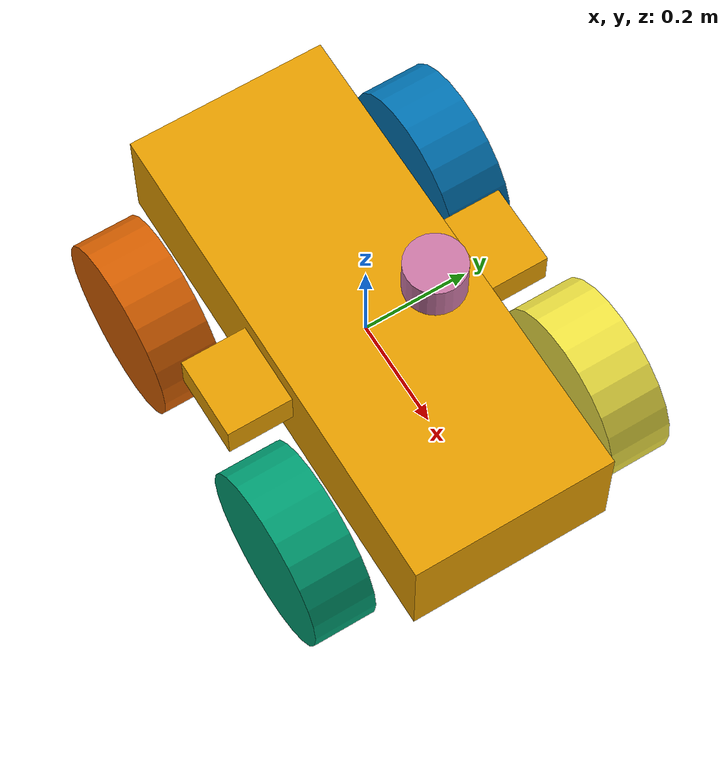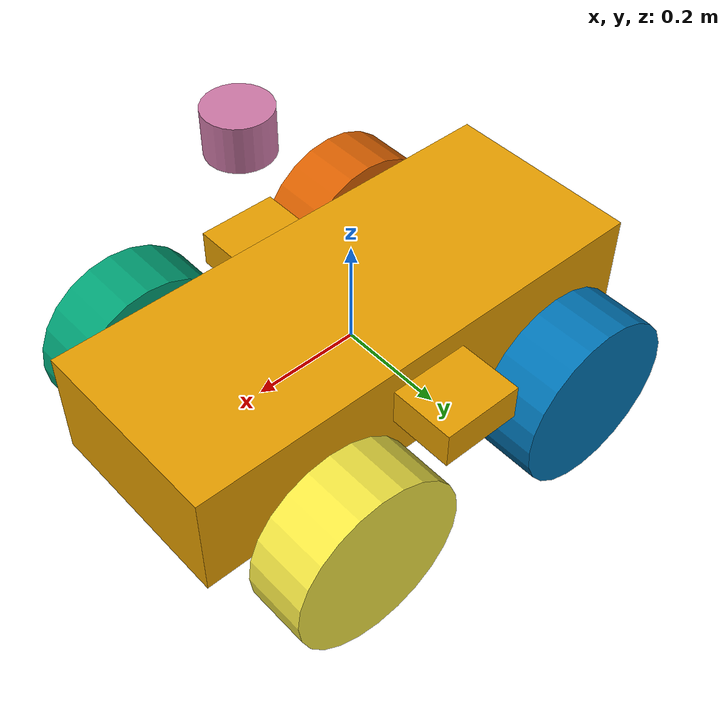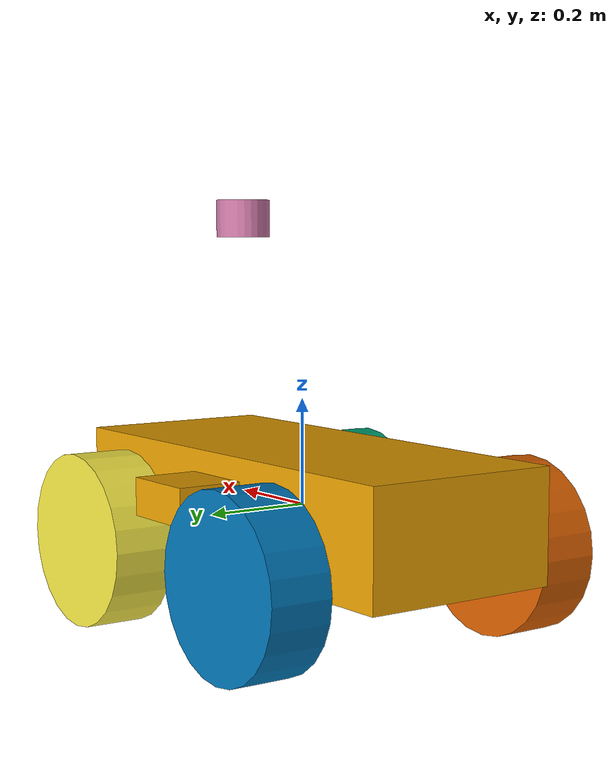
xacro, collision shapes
<robot name="scout_v2" xmlns:xacro="http://ros.org/wiki/xacro">

    <xacro:arg name="robot_namespace" default="/" />

    <xacro:property name="M_PI" value="3.14159"/>
    <xacro:property name="base_x_size" value="0.9250000" />
    <xacro:property name="base_y_size" value="0.380000" />
    <xacro:property name="base_z_size" value="0.210000" />

    <xacro:property name="wheelbase" value="0.498" />
    <xacro:property name="track" value="0.58306" />
    <xacro:property name="wheel_vertical_offset" value="-0.0702" />

    <xacro:property name="wheel_length" value="1.1653e-01" />
    <xacro:property name="wheel_radius" value="1.6459e-01" />

    <xacro:include filename="$(find diff_drive_gvf_sim)/urdf/scout2/scout2_xacro.xacro" />

    <!-- Base link -->
    <link name="base_link">
        <visual>
            <origin xyz="0 0 0" rpy="0 0 0" />
            <geometry>
                <mesh filename="package://diff_drive_gvf_sim/meshes/base_link.dae" />
            </geometry>
        </visual>
        <collision>
            <origin xyz="0 0 0.008" rpy="0 0 0" />
            <geometry>
                <box size="${base_x_size} ${base_y_size} ${base_z_size}"/>
            </geometry>
        </collision>
        <collision>
            <origin xyz="0 0 ${base_z_size/6}" rpy="0 0 0" />
            <geometry>
                <box size="${base_x_size/6} ${base_y_size*1.65} ${base_z_size/3}"/>
            </geometry>
        </collision>
    </link>

    <link name="inertial_link">
        <inertial>
            <mass value="200" />
            <origin xyz="0.0 0.0 0.0" />
            <inertia ixx="2.288641" ixy="0" ixz="0" iyy="5.103976" iyz="0" izz="3.431465" />
        </inertial>
    </link>

    <joint name="inertial_joint" type="fixed">
        <origin xyz="0 0 0" rpy="0 0 0" />
        <parent link="base_link" />
        <child link="inertial_link" />
    </joint>

    <xacro:scout_wheel_type1 wheel_prefix="front_right">
        <origin xyz="${wheelbase/2} ${-track/2} ${wheel_vertical_offset}" rpy="3.14 0 0" />
    </xacro:scout_wheel_type1>
    <xacro:scout_wheel_type2 wheel_prefix="front_left">
        <origin xyz="${wheelbase/2} ${track/2} ${wheel_vertical_offset}" rpy="0 0 0" />
    </xacro:scout_wheel_type2>
    <xacro:scout_wheel_type1 wheel_prefix="rear_left">
        <origin xyz="${-wheelbase/2} ${track/2} ${wheel_vertical_offset}" rpy="0 0 0" />
    </xacro:scout_wheel_type1>
    <xacro:scout_wheel_type2 wheel_prefix="rear_right">
        <origin xyz="${-wheelbase/2} ${-track/2} ${wheel_vertical_offset}" rpy="3.14 0 0" />
    </xacro:scout_wheel_type2>

    <!-- Actuator configurations -->
    <xacro:scout_wheel_transmission wheel_prefix="front_right" />
    <xacro:scout_wheel_transmission wheel_prefix="front_left" />
    <xacro:scout_wheel_transmission wheel_prefix="rear_left" />
    <xacro:scout_wheel_transmission wheel_prefix="rear_right" />

    <!-- Controller configurations -->
    <gazebo>
        <plugin name="gazebo_ros_control" filename="libgazebo_ros_control.so">
            <robotNamespace>$(arg robot_namespace)</robotNamespace>
        </plugin>
    </gazebo>

    <!-- kp spring constant, kd damping constant -->
    <gazebo reference="front_left_wheel">
        <mu1>10</mu1>
        <mu2>10</mu2>
        <kp>10000000.0</kp>
        <kd>1.0</kd>
        <minDepth>0.01</minDepth>
        <fdir1>1 0 0</fdir1>
        <maxContacts value="64"/>
    </gazebo>
    <gazebo reference="front_right_wheel">
        <mu1>10</mu1>
        <mu2>10</mu2>
        <kp>10000000.0</kp>
        <kd>1.0</kd>
        <minDepth>0.01</minDepth>
        <fdir1>1 0 0</fdir1>
        <maxContacts value="64"/>
    </gazebo>
    <gazebo reference="rear_left_wheel">
        <mu1>10</mu1>
        <mu2>10</mu2>
        <kp>10000000.0</kp>
        <kd>1.0</kd>
        <minDepth>0.01</minDepth>
        <fdir1>1 0 0</fdir1>
        <maxContacts value="64"/>
    </gazebo>
    <gazebo reference="rear_right_wheel">
        <mu1>10</mu1>
        <mu2>10</mu2>
        <kp>10000000.0</kp>
        <kd>1.0</kd>
        <minDepth>0.01</minDepth>
        <fdir1>1 0 0</fdir1>
        <maxContacts value="64"/>
    </gazebo>

    <gazebo reference="base_link">
	    <sensor name="imu_sensor" type="imu">
	        <always_on>true</always_on>
            <update_rate>200</update_rate>
            <visualize>true</visualize>
            <topic>imu/data</topic>
		    <plugin name="imu_controller" filename="libgazebo_ros_imu_sensor.so" >
			    <topicName>imu/data</topicName>
			    <bodyName>base_link</bodyName>
			    <updateRateHZ>200.0</updateRateHZ>
			    <gaussianNoise>0.0</gaussianNoise>
			    <xyzOffset>0 0 0</xyzOffset>
			    <rpyOffset>0 0 0</rpyOffset>
			    <frameName>imu_link</frameName>

			    <gyroscopeNoiseDensity>0.0006</gyroscopeNoiseDensity>
			    <gyroscopeRandomWalk>0.000003</gyroscopeRandomWalk>
			    <gyroscopeTurnOnBiasSigma>0.03</gyroscopeTurnOnBiasSigma>

			    <accelerometerNoiseDensity>0.002</accelerometerNoiseDensity>
			    <accelerometerRandomWalk>0.00002</accelerometerRandomWalk>
			    <accelerometerTurnOnBiasSigma>0.1</accelerometerTurnOnBiasSigma>
			</plugin>
	  	    <pose>0 0 0 0 0 0</pose>
	    </sensor>
	 </gazebo>

    <xacro:include filename="$(find velodyne_description)/urdf/VLP-16.urdf.xacro"/>
    <xacro:VLP-16 parent="base_link" name="velodyne" topic="velodyne_points" organize_cloud="false" hz="10" samples="440" gpu="false">
        <origin xyz="0.2 0 0.5" rpy="0 0 0" />
    </xacro:VLP-16>

</robot>

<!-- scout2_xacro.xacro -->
<robot xmlns:xacro="http://ros.org/wiki/xacro">

    <xacro:macro name="scout_wheel_transmission" params="wheel_prefix">
        <transmission name="${wheel_prefix}_wheel_trans" type="SimpleTransmission">
            <type>transmission_interface/SimpleTransmission</type>
            <actuator name="${wheel_prefix}_wheel_motor">
                <mechanicalReduction>1</mechanicalReduction>
            </actuator>
            <joint name="${wheel_prefix}_wheel">
                <hardwareInterface>hardware_interface/VelocityJointInterface</hardwareInterface>
            </joint>
        </transmission>
    </xacro:macro>

    <xacro:macro name="scout_wheel_type1" params="wheel_prefix *joint_pose">
        <link name="${wheel_prefix}_wheel_link">
            <inertial>
                <mass value="8" />
                <origin xyz="0 0 0" />
                <inertia ixx="0.1171" ixy="0" ixz="0" iyy="0.1361" iyz="0" izz="0.1171" />
            </inertial>
            <visual>
                <origin xyz="0 0 0" rpy="0 0 0" />
                <geometry>
                    <mesh filename="package://diff_drive_gvf_sim/meshes/wheel_type1.dae" />
                </geometry>
            </visual>
            <collision>
                <origin xyz="0 0 0" rpy="${M_PI/2} 0 0" />
                <geometry>
                    <cylinder length="${wheel_length}" radius="${wheel_radius}" />
                </geometry>
                     <contact>
                         <ode>
                        <min_depth>0.001</min_depth>
                         </ode>
                    </contact>
            </collision>
        </link>

        <joint name="${wheel_prefix}_wheel" type="continuous">
            <parent link="base_link"/>
            <child link="${wheel_prefix}_wheel_link"/>
            <xacro:insert_block name="joint_pose"/>
            <axis xyz="0 -1 0" rpy="0 0 0" />
        </joint>
    </xacro:macro>

    <xacro:macro name="scout_wheel_type2" params="wheel_prefix *joint_pose">
        <link name="${wheel_prefix}_wheel_link">
            <inertial>
                <mass value="8" />
                <origin xyz="0 0 0" />
                <inertia ixx="0.1171" ixy="0" ixz="0" iyy="0.1361" iyz="0" izz="0.1171" />
            </inertial>
            <visual>
                <origin xyz="0 0 0" rpy="0 0 0" />
                <geometry>
                    <mesh filename="package://diff_drive_gvf_sim/meshes/wheel_type1.dae" />
                </geometry>
            </visual>
            <collision>
                <origin xyz="0 0 0" rpy="${M_PI/2} 0 0" />
                <geometry>
                    <cylinder length="${wheel_length}" radius="${wheel_radius}" />
                </geometry>
                    <contact>
                         <ode>
                        <min_depth>0.001</min_depth>
                         </ode>
                    </contact>
            </collision>
        </link>

        <joint name="${wheel_prefix}_wheel" type="continuous">
            <parent link="base_link"/>
            <child link="${wheel_prefix}_wheel_link"/>
            <xacro:insert_block name="joint_pose"/>
            <axis xyz="0 -1 0" rpy="0 0 0" />
        </joint>
    </xacro:macro>

</robot>

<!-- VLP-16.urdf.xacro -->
<robot xmlns:xacro="http://www.ros.org/wiki/xacro" name="VLP-16">
  <xacro:property name="M_PI" value="3.1415926535897931" />
  <xacro:macro name="VLP-16" params="*origin is_sim:=true parent:=base_link name:=velodyne tf_prefix:='' topic:=/velodyne_points organize_cloud:=false hz:=10 lasers:=16 samples:=1875 collision_range:=0.3 min_range:=0.0 max_range:=100.0 noise:=0.008 min_angle:=-${M_PI} max_angle:=${M_PI} gpu:=false">

    <joint name="${name}_base_mount_joint" type="fixed">
      <xacro:insert_block name="origin" />
      <parent link="${parent}"/>
      <child link="${name}_base_link"/>
    </joint>

    <link name="${name}_base_link">
      <inertial>
        <mass value="0.83"/>
        <origin xyz="0 0 0.03585"/>
        <inertia ixx="${(0.83 * (3.0*0.0516*0.0516 + 0.0717*0.0717)) / 12.0}" ixy="0" ixz="0"
          iyy="${(0.83 * (3.0*0.0516*0.0516 + 0.0717*0.0717)) / 12.0}" iyz="0"
          izz="${0.5 * 0.83 * (0.0516*0.0516)}"/>
      </inertial>
      <visual>
        <geometry>
          <mesh filename="package://velodyne_description/meshes/VLP16_base_1.dae" />
        </geometry>
      </visual>
      <visual>
        <geometry>
          <mesh filename="package://velodyne_description/meshes/VLP16_base_2.dae" />
        </geometry>
      </visual>
      <collision>
        <origin rpy="0 0 0" xyz="0 0 0.03585"/>
        <geometry>
          <cylinder radius="0.0516" length="0.0717"/>
        </geometry>
      </collision>
    </link>

    <joint name="${name}_base_scan_joint" type="fixed" >
      <origin xyz="0 0 0.0377" rpy="0 0 0" />
      <parent link="${name}_base_link" />
      <child link="${name}"/>
    </joint>

    <link name="${name}">
      <inertial>
        <mass value="0.01"/>
        <origin xyz="0 0 0"/>
        <inertia ixx="1e-7" ixy="0" ixz="0" iyy="1e-7" iyz="0" izz="1e-7"/>
      </inertial>
      <visual>
        <origin xyz="0 0 -0.0377" />
        <geometry>
          <mesh filename="package://velodyne_description/meshes/VLP16_scan.dae" />
        </geometry>
      </visual>
      <collision>
        <geometry>
          <sphere radius="0"/>
        </geometry>
      </collision>
    </link>

    <!-- Gazebo requires the velodyne_gazebo_plugins package -->
    <xacro:if value="${is_sim}">
        <gazebo reference="${name}">
            <xacro:if value="${gpu}">
                <sensor type="gpu_ray" name="${name}-VLP16">
                <pose>0 0 0 0 0 0</pose>
                <visualize>false</visualize>
                <update_rate>${hz}</update_rate>
                <ray>
                    <scan>
                    <horizontal>
                        <samples>${samples}</samples>
                        <resolution>1</resolution>
                        <min_angle>${min_angle}</min_angle>
                        <max_angle>${max_angle}</max_angle>
                    </horizontal>
                    <vertical>
                        <samples>${lasers}</samples>
                        <resolution>1</resolution>
                        <min_angle>-${15.0*M_PI/180.0}</min_angle>
                        <max_angle> ${15.0*M_PI/180.0}</max_angle>
                    </vertical>
                    </scan>
                    <range>
                    <min>${collision_range}</min>
                    <max>${max_range+1}</max>
                    <resolution>0.001</resolution>
                    </range>
                    <noise>
                    <type>gaussian</type>
                    <mean>0.0</mean>
                    <stddev>0.0</stddev>
                    </noise>
                </ray>
                <plugin name="gazebo_ros_laser_controller" filename="libgazebo_ros_velodyne_laser.so">
                    <ros>
                    <namespace>/${name}</namespace>
                    <remapping>~/out:=${topic}</remapping>
                    </ros>
                    <tf_prefix>${tf_prefix}</tf_prefix>
                    <frame_name>${name}</frame_name>
                    <organize_cloud>${organize_cloud}</organize_cloud>
                    <min_range>${min_range}</min_range>
                    <max_range>${max_range}</max_range>
                    <gaussian_noise>${noise}</gaussian_noise>
                </plugin>
                </sensor>
            </xacro:if>
            <xacro:unless value="${gpu}">
                <sensor type="ray" name="${name}-VLP16">
                <pose>0 0 0 0 0 0</pose>
                <visualize>false</visualize>
                <update_rate>${hz}</update_rate>
                <ray>
                    <scan>
                    <horizontal>
                        <samples>${samples}</samples>
                        <resolution>1</resolution>
                        <min_angle>${min_angle}</min_angle>
                        <max_angle>${max_angle}</max_angle>
                    </horizontal>
                    <vertical>
                        <samples>${lasers}</samples>
                        <resolution>1</resolution>
                        <min_angle>-${15.0*M_PI/180.0}</min_angle>
                        <max_angle> ${15.0*M_PI/180.0}</max_angle>
                    </vertical>
                    </scan>
                    <range>
                    <min>${collision_range}</min>
                    <max>${max_range+1}</max>
                    <resolution>0.001</resolution>
                    </range>
                    <noise>
                    <type>gaussian</type>
                    <mean>0.0</mean>
                    <stddev>0.0</stddev>
                    </noise>
                </ray>
                <plugin name="gazebo_ros_laser_controller" filename="libgazebo_ros_velodyne_laser.so">
                    <ros>
                    <namespace>/${name}</namespace>
                    <remapping>~/out:=${topic}</remapping>
                    </ros>
                    <tf_prefix>${tf_prefix}</tf_prefix>
                    <frame_name>${name}</frame_name>
                    <organize_cloud>${organize_cloud}</organize_cloud>
                    <min_range>${min_range}</min_range>
                    <max_range>${max_range}</max_range>
                    <gaussian_noise>${noise}</gaussian_noise>
                </plugin>
                </sensor>
            </xacro:unless>
        </gazebo>
    </xacro:if>

  </xacro:macro>
</robot>
